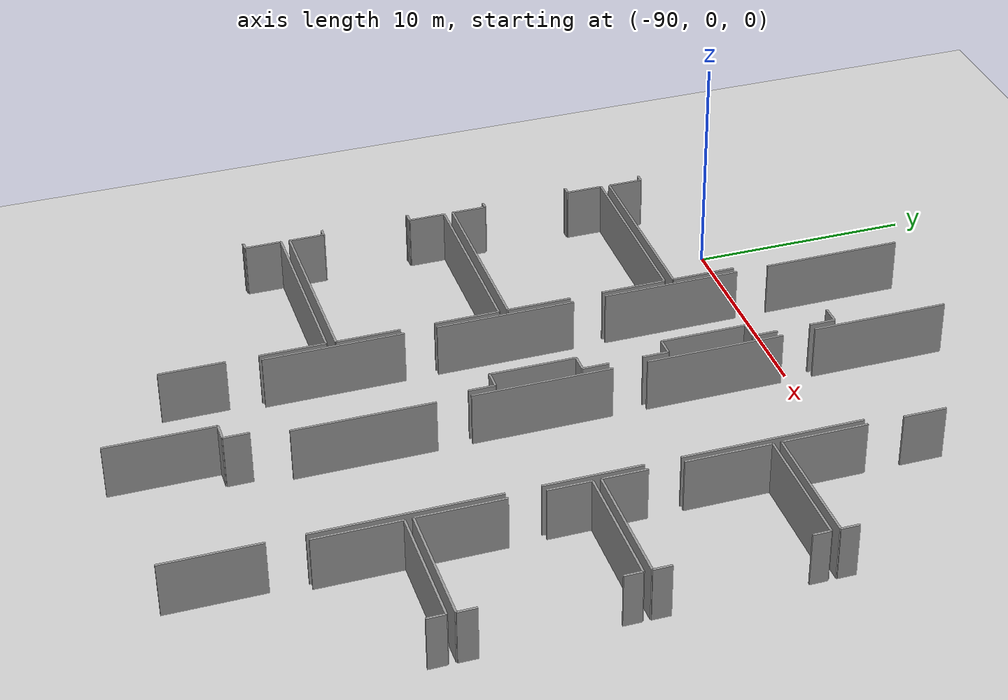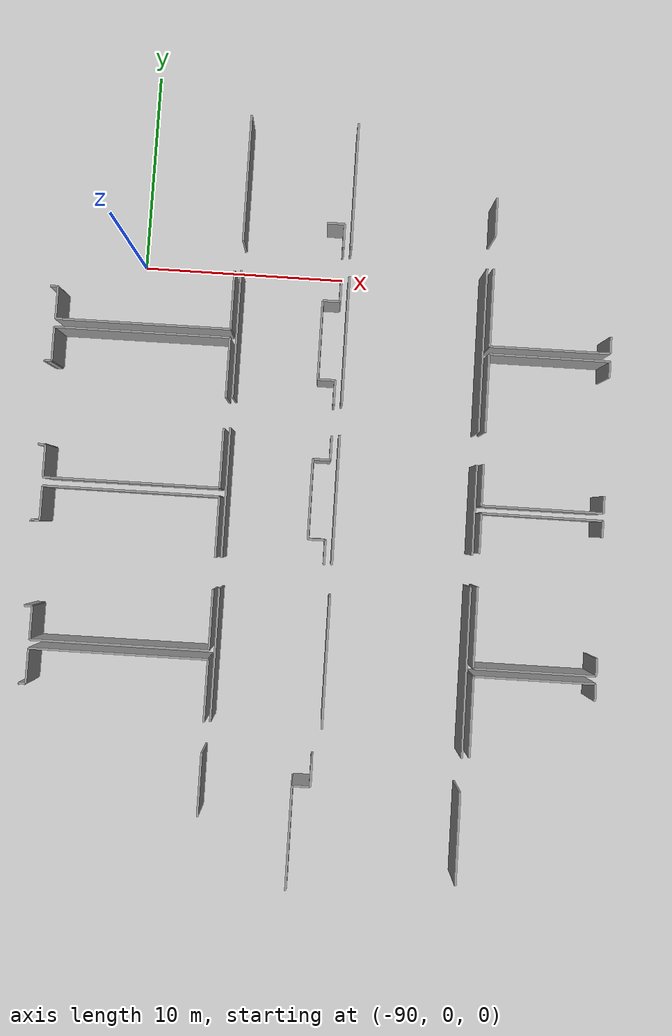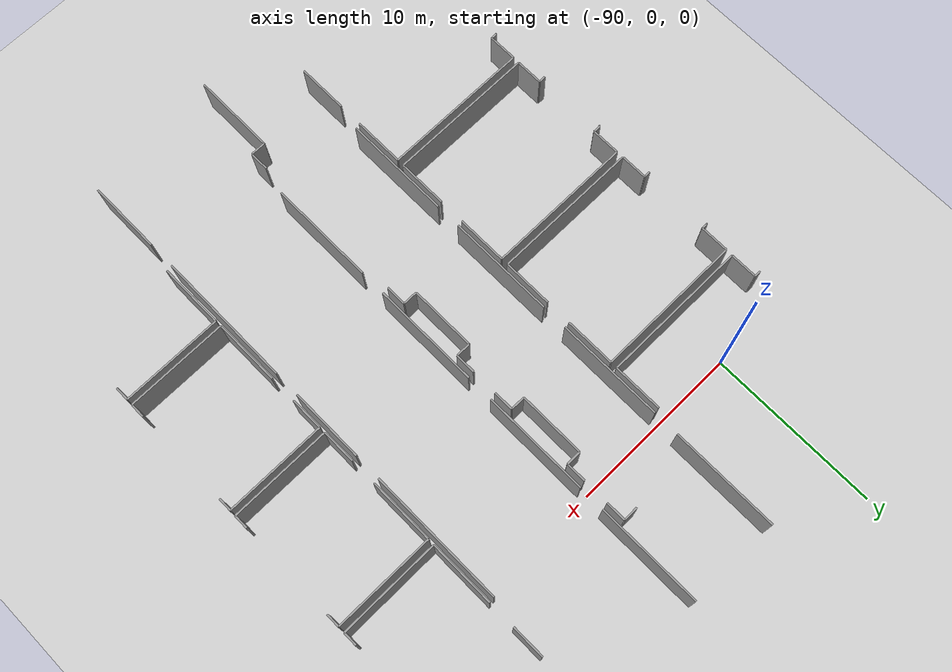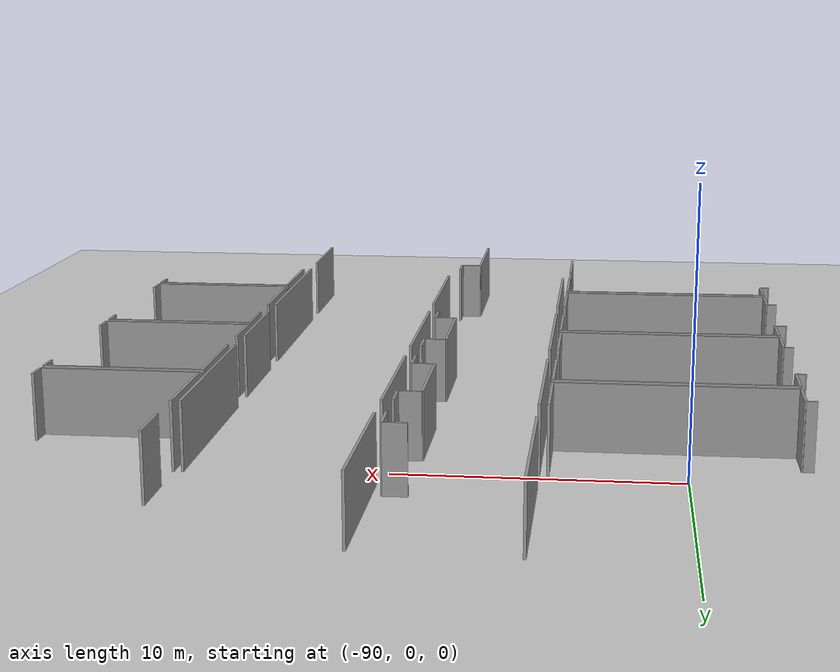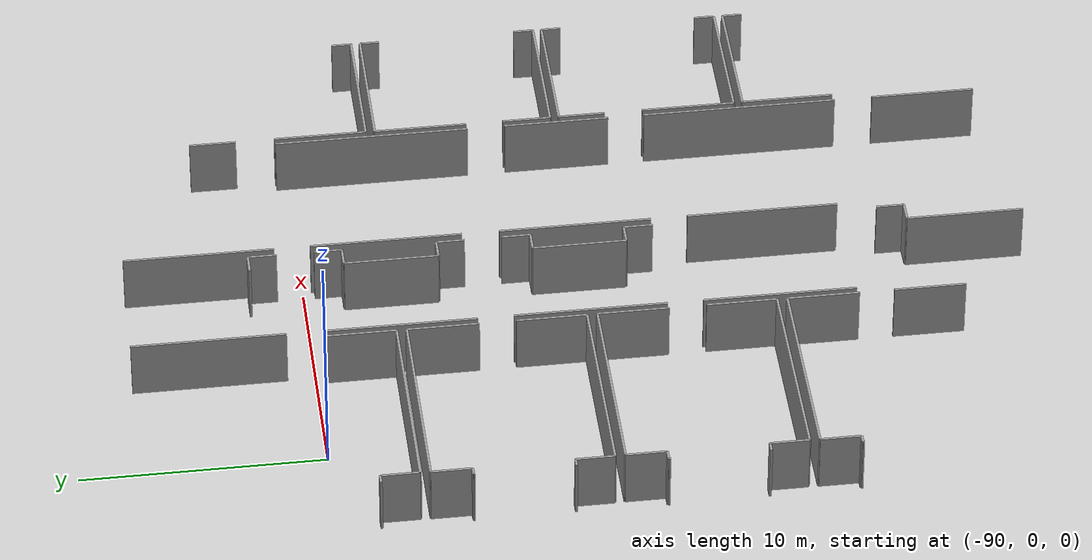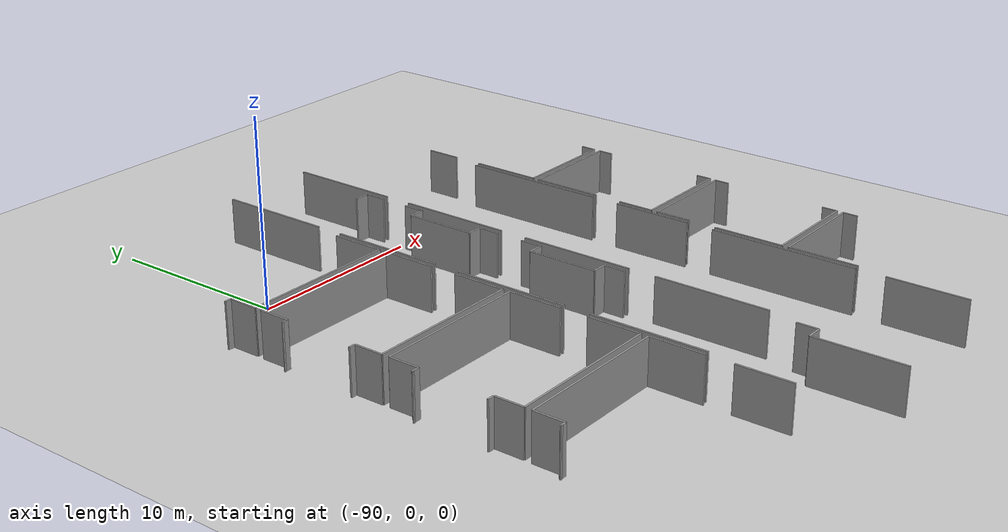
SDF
<sdf version="1.6">
 <world name="default">
  <model name="ground_plane">
   <static>1</static>
   <link name="link">
    <collision name="collision">
     <geometry><plane><normal>0 0 1</normal><size>100 100</size></plane></geometry>
     <surface><friction><ode><mu>100</mu><mu2>50</mu2></ode></friction></surface>
    </collision>
    <visual name="visual">
     <cast_shadows>0</cast_shadows>
     <geometry><plane><normal>0 0 1</normal><size>100 100</size></plane></geometry>
     <material>
      <script><uri>file://media/materials/scripts/gazebo.material</uri><name>Gazebo/Grey</name></script>
     </material>
    </visual>
   </link>
  </model>
  <model name="0510035517_A_40_1_105">
   <static>1</static>
   <link name="Wall_339">
    <collision name="Wall_339_Collision">
     <geometry><box><size>1.58949823043 0.1 2.5</size></box></geometry>
     <pose>0.794749115216 0 1.25 0 0 0</pose>
    </collision>
    <visual name="Wall_339_Visual">
     <pose>0.794749115216 0 1.25 0 0 0</pose>
     <geometry><box><size>1.58949823043 0.1 2.5</size></box></geometry>
     <material>
      <script><uri>file://media/materials/scripts/gazebo.material</uri><name>Gazebo/Grey</name></script>
      <ambient>1 1 1 1</ambient>
     </material>
    </visual>
    <pose>0.732480636409 -67.0842467103 0 0 0 1.57079632679</pose>
   </link>
   <link name="Wall_340">
    <collision name="Wall_340_Collision">
     <geometry><box><size>0.382760526868 0.1 2.5</size></box></geometry>
     <pose>0.191380263434 0 1.25 0 0 0</pose>
    </collision>
    <visual name="Wall_340_Visual">
     <pose>0.191380263434 0 1.25 0 0 0</pose>
     <geometry><box><size>0.382760526868 0.1 2.5</size></box></geometry>
     <material>
      <script><uri>file://media/materials/scripts/gazebo.material</uri><name>Gazebo/Grey</name></script>
      <ambient>1 1 1 1</ambient>
     </material>
    </visual>
    <pose>0.732480636409 -65.4947484798 0 0 0 3.14159265359</pose>
   </link>
   <link name="Wall_346">
    <collision name="Wall_346_Collision">
     <geometry><box><size>2.89434055775 0.1 2.5</size></box></geometry>
     <pose>1.44717027887 0 1.25 0 0 0</pose>
    </collision>
    <visual name="Wall_346_Visual">
     <pose>1.44717027887 0 1.25 0 0 0</pose>
     <geometry><box><size>2.89434055775 0.1 2.5</size></box></geometry>
     <material>
      <script><uri>file://media/materials/scripts/gazebo.material</uri><name>Gazebo/Grey</name></script>
      <ambient>1 1 1 1</ambient>
     </material>
    </visual>
    <pose>9.2894404097 -64.1827897549 0 0 0 -1.57079632679</pose>
   </link>
   <link name="Wall_347">
    <collision name="Wall_347_Collision">
     <geometry><box><size>8.55696273247 0.1 2.5</size></box></geometry>
     <pose>4.27848136623 0 1.25 0 0 0</pose>
    </collision>
    <visual name="Wall_347_Visual">
     <pose>4.27848136623 0 1.25 0 0 0</pose>
     <geometry><box><size>8.55696273247 0.1 2.5</size></box></geometry>
     <material>
      <script><uri>file://media/materials/scripts/gazebo.material</uri><name>Gazebo/Grey</name></script>
      <ambient>1 1 1 1</ambient>
     </material>
    </visual>
    <pose>9.2894404097 -67.0771303127 0 0 0 -3.14076100355</pose>
   </link>
   <link name="Wall_348">
    <collision name="Wall_348_Collision">
     <geometry><box><size>1.57856947701 0.1 2.5</size></box></geometry>
     <pose>0.789284738504 0 1.25 0 0 0</pose>
    </collision>
    <visual name="Wall_348_Visual">
     <pose>0.789284738504 0 1.25 0 0 0</pose>
     <geometry><box><size>1.57856947701 0.1 2.5</size></box></geometry>
     <material>
      <script><uri>file://media/materials/scripts/gazebo.material</uri><name>Gazebo/Grey</name></script>
      <ambient>1 1 1 1</ambient>
     </material>
    </visual>
    <pose>0.739342876931 -74.8342578296 0 0 0 1.57079632679</pose>
   </link>
   <link name="Wall_349">
    <collision name="Wall_349_Collision">
     <geometry><box><size>0.365477847036 0.1 2.5</size></box></geometry>
     <pose>0.182738923518 0 1.25 0 0 0</pose>
    </collision>
    <visual name="Wall_349_Visual">
     <pose>0.182738923518 0 1.25 0 0 0</pose>
     <geometry><box><size>0.365477847036 0.1 2.5</size></box></geometry>
     <material>
      <script><uri>file://media/materials/scripts/gazebo.material</uri><name>Gazebo/Grey</name></script>
      <ambient>1 1 1 1</ambient>
     </material>
    </visual>
    <pose>0.739342876931 -73.2556883526 0 0 0 3.14159265359</pose>
   </link>
   <link name="Wall_350">
    <collision name="Wall_350_Collision">
     <geometry><box><size>0.0505772542142 0.1 2.5</size></box></geometry>
     <pose>0.0252886271071 0 1.25 0 0 0</pose>
    </collision>
    <visual name="Wall_350_Visual">
     <pose>0.0252886271071 0 1.25 0 0 0</pose>
     <geometry><box><size>0.0505772542142 0.1 2.5</size></box></geometry>
     <material>
      <script><uri>file://media/materials/scripts/gazebo.material</uri><name>Gazebo/Grey</name></script>
      <ambient>1 1 1 1</ambient>
     </material>
    </visual>
    <pose>0.373865029895 -69.2156077848 0 0 0 1.57079632679</pose>
   </link>
   <link name="Wall_351">
    <collision name="Wall_351_Collision">
     <geometry><box><size>0.337012256724 0.1 2.5</size></box></geometry>
     <pose>0.168506128362 0 1.25 0 0 0</pose>
    </collision>
    <visual name="Wall_351_Visual">
     <pose>0.168506128362 0 1.25 0 0 0</pose>
     <geometry><box><size>0.337012256724 0.1 2.5</size></box></geometry>
     <material>
      <script><uri>file://media/materials/scripts/gazebo.material</uri><name>Gazebo/Grey</name></script>
      <ambient>1 1 1 1</ambient>
     </material>
    </visual>
    <pose>0.373865029895 -69.1650305306 0 0 0 0.0</pose>
   </link>
   <link name="Wall_352">
    <collision name="Wall_352_Collision">
     <geometry><box><size>1.67540331548 0.1 2.5</size></box></geometry>
     <pose>0.837701657739 0 1.25 0 0 0</pose>
    </collision>
    <visual name="Wall_352_Visual">
     <pose>0.837701657739 0 1.25 0 0 0</pose>
     <geometry><box><size>1.67540331548 0.1 2.5</size></box></geometry>
     <material>
      <script><uri>file://media/materials/scripts/gazebo.material</uri><name>Gazebo/Grey</name></script>
      <ambient>1 1 1 1</ambient>
     </material>
    </visual>
    <pose>0.710877286619 -69.1650305306 0 0 0 1.57079632679</pose>
   </link>
   <link name="Wall_353">
    <collision name="Wall_353_Collision">
     <geometry><box><size>8.57780065191 0.1 2.5</size></box></geometry>
     <pose>4.28890032596 0 1.25 0 0 0</pose>
    </collision>
    <visual name="Wall_353_Visual">
     <pose>4.28890032596 0 1.25 0 0 0</pose>
     <geometry><box><size>8.57780065191 0.1 2.5</size></box></geometry>
     <material>
      <script><uri>file://media/materials/scripts/gazebo.material</uri><name>Gazebo/Grey</name></script>
      <ambient>1 1 1 1</ambient>
     </material>
    </visual>
    <pose>0.710877286619 -67.4896272151 0 0 0 0.0</pose>
   </link>
   <link name="Wall_354">
    <collision name="Wall_354_Collision">
     <geometry><box><size>2.95101758131 0.1 2.5</size></box></geometry>
     <pose>1.47550879066 0 1.25 0 0 0</pose>
    </collision>
    <visual name="Wall_354_Visual">
     <pose>1.47550879066 0 1.25 0 0 0</pose>
     <geometry><box><size>2.95101758131 0.1 2.5</size></box></geometry>
     <material>
      <script><uri>file://media/materials/scripts/gazebo.material</uri><name>Gazebo/Grey</name></script>
      <ambient>1 1 1 1</ambient>
     </material>
    </visual>
    <pose>9.28867793853 -67.4896272151 0 0 0 -1.57079632679</pose>
   </link>
   <link name="Wall_355">
    <collision name="Wall_355_Collision">
     <geometry><box><size>2.89713628537 0.1 2.5</size></box></geometry>
     <pose>1.44856814268 0 1.25 0 0 0</pose>
    </collision>
    <visual name="Wall_355_Visual">
     <pose>1.44856814268 0 1.25 0 0 0</pose>
     <geometry><box><size>2.89713628537 0.1 2.5</size></box></geometry>
     <material>
      <script><uri>file://media/materials/scripts/gazebo.material</uri><name>Gazebo/Grey</name></script>
      <ambient>1 1 1 1</ambient>
     </material>
    </visual>
    <pose>9.28867793853 -71.9320384031 0 0 0 -1.57079632679</pose>
   </link>
   <link name="Wall_356">
    <collision name="Wall_356_Collision">
     <geometry><box><size>8.54933657273 0.1 2.5</size></box></geometry>
     <pose>4.27466828637 0 1.25 0 0 0</pose>
    </collision>
    <visual name="Wall_356_Visual">
     <pose>4.27466828637 0 1.25 0 0 0</pose>
     <geometry><box><size>8.54933657273 0.1 2.5</size></box></geometry>
     <material>
      <script><uri>file://media/materials/scripts/gazebo.material</uri><name>Gazebo/Grey</name></script>
      <ambient>1 1 1 1</ambient>
     </material>
    </visual>
    <pose>9.28867793853 -74.8291746885 0 0 0 -3.14099808799</pose>
   </link>
   <link name="Wall_357">
    <collision name="Wall_357_Collision">
     <geometry><box><size>1.59305642922 0.1 2.5</size></box></geometry>
     <pose>0.79652821461 0 1.25 0 0 0</pose>
    </collision>
    <visual name="Wall_357_Visual">
     <pose>0.79652821461 0 1.25 0 0 0</pose>
     <geometry><box><size>1.59305642922 0.1 2.5</size></box></geometry>
     <material>
      <script><uri>file://media/materials/scripts/gazebo.material</uri><name>Gazebo/Grey</name></script>
      <ambient>1 1 1 1</ambient>
     </material>
    </visual>
    <pose>0.728414123508 -82.6104471258 0 0 0 1.57079632679</pose>
   </link>
   <link name="Wall_358">
    <collision name="Wall_358_Collision">
     <geometry><box><size>0.395722536742 0.1 2.5</size></box></geometry>
     <pose>0.197861268371 0 1.25 0 0 0</pose>
    </collision>
    <visual name="Wall_358_Visual">
     <pose>0.197861268371 0 1.25 0 0 0</pose>
     <geometry><box><size>0.395722536742 0.1 2.5</size></box></geometry>
     <material>
      <script><uri>file://media/materials/scripts/gazebo.material</uri><name>Gazebo/Grey</name></script>
      <ambient>1 1 1 1</ambient>
     </material>
    </visual>
    <pose>0.728414123508 -81.0173906966 0 0 0 3.14159265359</pose>
   </link>
   <link name="Wall_359">
    <collision name="Wall_359_Collision">
     <geometry><box><size>0.0765012739622 0.1 2.5</size></box></geometry>
     <pose>0.0382506369811 0 1.25 0 0 0</pose>
    </collision>
    <visual name="Wall_359_Visual">
     <pose>0.0382506369811 0 1.25 0 0 0</pose>
     <geometry><box><size>0.0765012739622 0.1 2.5</size></box></geometry>
     <material>
      <script><uri>file://media/materials/scripts/gazebo.material</uri><name>Gazebo/Grey</name></script>
      <ambient>1 1 1 1</ambient>
     </material>
    </visual>
    <pose>0.332691586766 -76.9953552798 0 0 0 1.57079632679</pose>
   </link>
   <link name="Wall_360">
    <collision name="Wall_360_Collision">
     <geometry><box><size>0.419613300039 0.1 2.5</size></box></geometry>
     <pose>0.209806650019 0 1.25 0 0 0</pose>
    </collision>
    <visual name="Wall_360_Visual">
     <pose>0.209806650019 0 1.25 0 0 0</pose>
     <geometry><box><size>0.419613300039 0.1 2.5</size></box></geometry>
     <material>
      <script><uri>file://media/materials/scripts/gazebo.material</uri><name>Gazebo/Grey</name></script>
      <ambient>1 1 1 1</ambient>
     </material>
    </visual>
    <pose>0.332691586766 -76.9188540058 0 0 0 0.0</pose>
   </link>
   <link name="Wall_361">
    <collision name="Wall_361_Collision">
     <geometry><box><size>1.67209927375 0.1 2.5</size></box></geometry>
     <pose>0.836049636873 0 1.25 0 0 0</pose>
    </collision>
    <visual name="Wall_361_Visual">
     <pose>0.836049636873 0 1.25 0 0 0</pose>
     <geometry><box><size>1.67209927375 0.1 2.5</size></box></geometry>
     <material>
      <script><uri>file://media/materials/scripts/gazebo.material</uri><name>Gazebo/Grey</name></script>
      <ambient>1 1 1 1</ambient>
     </material>
    </visual>
    <pose>0.752304886805 -76.9188540058 0 0 0 1.57079632679</pose>
   </link>
   <link name="Wall_362">
    <collision name="Wall_362_Collision">
     <geometry><box><size>8.55136831805 0.1 2.5</size></box></geometry>
     <pose>4.27568415903 0 1.25 0 0 0</pose>
    </collision>
    <visual name="Wall_362_Visual">
     <pose>4.27568415903 0 1.25 0 0 0</pose>
     <geometry><box><size>8.55136831805 0.1 2.5</size></box></geometry>
     <material>
      <script><uri>file://media/materials/scripts/gazebo.material</uri><name>Gazebo/Grey</name></script>
      <ambient>1 1 1 1</ambient>
     </material>
    </visual>
    <pose>0.752304886805 -75.2467547321 0 0 0 0.0</pose>
   </link>
   <link name="Wall_363">
    <collision name="Wall_363_Collision">
     <geometry><box><size>2.93576815793 0.1 2.5</size></box></geometry>
     <pose>1.46788407897 0 1.25 0 0 0</pose>
    </collision>
    <visual name="Wall_363_Visual">
     <pose>1.46788407897 0 1.25 0 0 0</pose>
     <geometry><box><size>2.93576815793 0.1 2.5</size></box></geometry>
     <material>
      <script><uri>file://media/materials/scripts/gazebo.material</uri><name>Gazebo/Grey</name></script>
      <ambient>1 1 1 1</ambient>
     </material>
    </visual>
    <pose>9.30367320486 -75.2467547321 0 0 0 -1.57079632679</pose>
   </link>
   <link name="Wall_364">
    <collision name="Wall_364_Collision">
     <geometry><box><size>2.89357808658 0.1 2.5</size></box></geometry>
     <pose>1.44678904329 0 1.25 0 0 0</pose>
    </collision>
    <visual name="Wall_364_Visual">
     <pose>1.44678904329 0 1.25 0 0 0</pose>
     <geometry><box><size>2.89357808658 0.1 2.5</size></box></geometry>
     <material>
      <script><uri>file://media/materials/scripts/gazebo.material</uri><name>Gazebo/Grey</name></script>
      <ambient>1 1 1 1</ambient>
     </material>
    </visual>
    <pose>9.30367320486 -79.7036528723 0 0 0 -1.57079632679</pose>
   </link>
   <link name="Wall_365">
    <collision name="Wall_365_Collision">
     <geometry><box><size>8.5752692657 0.1 2.5</size></box></geometry>
     <pose>4.28763463285 0 1.25 0 0 0</pose>
    </collision>
    <visual name="Wall_365_Visual">
     <pose>4.28763463285 0 1.25 0 0 0</pose>
     <geometry><box><size>8.5752692657 0.1 2.5</size></box></geometry>
     <material>
      <script><uri>file://media/materials/scripts/gazebo.material</uri><name>Gazebo/Grey</name></script>
      <ambient>1 1 1 1</ambient>
     </material>
    </visual>
    <pose>9.30367320486 -82.5972309589 0 0 0 -3.14005145742</pose>
   </link>
   <link name="Wall_368">
    <collision name="Wall_368_Collision">
     <geometry><box><size>0.0670974628772 0.1 2.5</size></box></geometry>
     <pose>0.0335487314386 0 1.25 0 0 0</pose>
    </collision>
    <visual name="Wall_368_Visual">
     <pose>0.0335487314386 0 1.25 0 0 0</pose>
     <geometry><box><size>0.0670974628772 0.1 2.5</size></box></geometry>
     <material>
      <script><uri>file://media/materials/scripts/gazebo.material</uri><name>Gazebo/Grey</name></script>
      <ambient>1 1 1 1</ambient>
     </material>
    </visual>
    <pose>0.379710642191 -84.753753582 0 0 0 1.57079632679</pose>
   </link>
   <link name="Wall_369">
    <collision name="Wall_369_Collision">
     <geometry><box><size>0.334216529104 0.1 2.5</size></box></geometry>
     <pose>0.167108264552 0 1.25 0 0 0</pose>
    </collision>
    <visual name="Wall_369_Visual">
     <pose>0.167108264552 0 1.25 0 0 0</pose>
     <geometry><box><size>0.334216529104 0.1 2.5</size></box></geometry>
     <material>
      <script><uri>file://media/materials/scripts/gazebo.material</uri><name>Gazebo/Grey</name></script>
      <ambient>1 1 1 1</ambient>
     </material>
    </visual>
    <pose>0.379710642191 -84.6866561191 0 0 0 0.0</pose>
   </link>
   <link name="Wall_370">
    <collision name="Wall_370_Collision">
     <geometry><box><size>1.66955770318 0.1 2.5</size></box></geometry>
     <pose>0.834778851591 0 1.25 0 0 0</pose>
    </collision>
    <visual name="Wall_370_Visual">
     <pose>0.834778851591 0 1.25 0 0 0</pose>
     <geometry><box><size>1.66955770318 0.1 2.5</size></box></geometry>
     <material>
      <script><uri>file://media/materials/scripts/gazebo.material</uri><name>Gazebo/Grey</name></script>
      <ambient>1 1 1 1</ambient>
     </material>
    </visual>
    <pose>0.713927171295 -84.6866561191 0 0 0 1.57079632679</pose>
   </link>
   <link name="Wall_371">
    <collision name="Wall_371_Collision">
     <geometry><box><size>8.5831379501 0.1 2.5</size></box></geometry>
     <pose>4.29156897505 0 1.25 0 0 0</pose>
    </collision>
    <visual name="Wall_371_Visual">
     <pose>4.29156897505 0 1.25 0 0 0</pose>
     <geometry><box><size>8.5831379501 0.1 2.5</size></box></geometry>
     <material>
      <script><uri>file://media/materials/scripts/gazebo.material</uri><name>Gazebo/Grey</name></script>
      <ambient>1 1 1 1</ambient>
     </material>
    </visual>
    <pose>0.713927171295 -83.017098416 0 0 0 0.0</pose>
   </link>
   <link name="Wall_372">
    <collision name="Wall_372_Collision">
     <geometry><box><size>2.96601284764 0.1 2.5</size></box></geometry>
     <pose>1.48300642382 0 1.25 0 0 0</pose>
    </collision>
    <visual name="Wall_372_Visual">
     <pose>1.48300642382 0 1.25 0 0 0</pose>
     <geometry><box><size>2.96601284764 0.1 2.5</size></box></geometry>
     <material>
      <script><uri>file://media/materials/scripts/gazebo.material</uri><name>Gazebo/Grey</name></script>
      <ambient>1 1 1 1</ambient>
     </material>
    </visual>
    <pose>9.29706512139 -83.017098416 0 0 0 -1.57079632679</pose>
   </link>
   <link name="Wall_373">
    <collision name="Wall_373_Collision">
     <geometry><box><size>2.94771353958 0.1 2.5</size></box></geometry>
     <pose>1.47385676979 0 1.25 0 0 0</pose>
    </collision>
    <visual name="Wall_373_Visual">
     <pose>1.47385676979 0 1.25 0 0 0</pose>
     <geometry><box><size>2.94771353958 0.1 2.5</size></box></geometry>
     <material>
      <script><uri>file://media/materials/scripts/gazebo.material</uri><name>Gazebo/Grey</name></script>
      <ambient>1 1 1 1</ambient>
     </material>
    </visual>
    <pose>9.29706512139 -87.414523805 0 0 0 -1.57079632679</pose>
   </link>
   <link name="Wall_416">
    <collision name="Wall_416_Collision">
     <geometry><box><size>3.81032258884 0.1 2.5</size></box></geometry>
     <pose>1.90516129442 0 1.25 0 0 0</pose>
    </collision>
    <visual name="Wall_416_Visual">
     <pose>1.90516129442 0 1.25 0 0 0</pose>
     <geometry><box><size>3.81032258884 0.1 2.5</size></box></geometry>
     <material>
      <script><uri>file://media/materials/scripts/gazebo.material</uri><name>Gazebo/Grey</name></script>
      <ambient>1 1 1 1</ambient>
     </material>
    </visual>
    <pose>21.9675568518 -86.8365706588 0 0 0 1.57079632679</pose>
   </link>
   <link name="Wall_417">
    <collision name="Wall_417_Collision">
     <geometry><box><size>5.82400894633 0.1 2.5</size></box></geometry>
     <pose>2.91200447316 0 1.25 0 0 0</pose>
    </collision>
    <visual name="Wall_417_Visual">
     <pose>2.91200447316 0 1.25 0 0 0</pose>
     <geometry><box><size>5.82400894633 0.1 2.5</size></box></geometry>
     <material>
      <script><uri>file://media/materials/scripts/gazebo.material</uri><name>Gazebo/Grey</name></script>
      <ambient>1 1 1 1</ambient>
     </material>
    </visual>
    <pose>21.9675568518 -83.02624807 0 0 0 0.0</pose>
   </link>
   <link name="Wall_418">
    <collision name="Wall_418_Collision">
     <geometry><box><size>0.814319208555 0.1 2.5</size></box></geometry>
     <pose>0.407159604277 0 1.25 0 0 0</pose>
    </collision>
    <visual name="Wall_418_Visual">
     <pose>0.407159604277 0 1.25 0 0 0</pose>
     <geometry><box><size>0.814319208555 0.1 2.5</size></box></geometry>
     <material>
      <script><uri>file://media/materials/scripts/gazebo.material</uri><name>Gazebo/Grey</name></script>
      <ambient>1 1 1 1</ambient>
     </material>
    </visual>
    <pose>27.7915657981 -83.02624807 0 0 0 -1.57079632679</pose>
   </link>
   <link name="Wall_421">
    <collision name="Wall_421_Collision">
     <geometry><box><size>3.87996162228 0.1 2.5</size></box></geometry>
     <pose>1.93998081114 0 1.25 0 0 0</pose>
    </collision>
    <visual name="Wall_421_Visual">
     <pose>1.93998081114 0 1.25 0 0 0</pose>
     <geometry><box><size>3.87996162228 0.1 2.5</size></box></geometry>
     <material>
      <script><uri>file://media/materials/scripts/gazebo.material</uri><name>Gazebo/Grey</name></script>
      <ambient>1 1 1 1</ambient>
     </material>
    </visual>
    <pose>21.9423953032 -82.660770223 0 0 0 1.57079632679</pose>
   </link>
   <link name="Wall_422">
    <collision name="Wall_422_Collision">
     <geometry><box><size>1.9361684553 0.1 2.5</size></box></geometry>
     <pose>0.968084227648 0 1.25 0 0 0</pose>
    </collision>
    <visual name="Wall_422_Visual">
     <pose>0.968084227648 0 1.25 0 0 0</pose>
     <geometry><box><size>1.9361684553 0.1 2.5</size></box></geometry>
     <material>
      <script><uri>file://media/materials/scripts/gazebo.material</uri><name>Gazebo/Grey</name></script>
      <ambient>1 1 1 1</ambient>
     </material>
    </visual>
    <pose>21.9423953032 -77.1989350819 0 0 0 1.57079632679</pose>
   </link>
   <link name="Wall_423">
    <collision name="Wall_423_Collision">
     <geometry><box><size>5.86111587656 0.1 2.5</size></box></geometry>
     <pose>2.93055793828 0 1.25 0 0 0</pose>
    </collision>
    <visual name="Wall_423_Visual">
     <pose>2.93055793828 0 1.25 0 0 0</pose>
     <geometry><box><size>5.86111587656 0.1 2.5</size></box></geometry>
     <material>
      <script><uri>file://media/materials/scripts/gazebo.material</uri><name>Gazebo/Grey</name></script>
      <ambient>1 1 1 1</ambient>
     </material>
    </visual>
    <pose>21.9423953032 -75.2627666266 0 0 0 0.0</pose>
   </link>
   <link name="Wall_424">
    <collision name="Wall_424_Collision">
     <geometry><box><size>0.805169554526 0.1 2.5</size></box></geometry>
     <pose>0.402584777263 0 1.25 0 0 0</pose>
    </collision>
    <visual name="Wall_424_Visual">
     <pose>0.402584777263 0 1.25 0 0 0</pose>
     <geometry><box><size>0.805169554526 0.1 2.5</size></box></geometry>
     <material>
      <script><uri>file://media/materials/scripts/gazebo.material</uri><name>Gazebo/Grey</name></script>
      <ambient>1 1 1 1</ambient>
     </material>
    </visual>
    <pose>27.8035111797 -75.2627666266 0 0 0 -1.57079632679</pose>
   </link>
   <link name="Wall_425">
    <collision name="Wall_425_Collision">
     <geometry><box><size>0.847359625881 0.1 2.5</size></box></geometry>
     <pose>0.42367981294 0 1.25 0 0 0</pose>
    </collision>
    <visual name="Wall_425_Visual">
     <pose>0.42367981294 0 1.25 0 0 0</pose>
     <geometry><box><size>0.847359625881 0.1 2.5</size></box></geometry>
     <material>
      <script><uri>file://media/materials/scripts/gazebo.material</uri><name>Gazebo/Grey</name></script>
      <ambient>1 1 1 1</ambient>
     </material>
    </visual>
    <pose>27.8035111797 -81.8134105971 0 0 0 -1.57079632679</pose>
   </link>
   <link name="Wall_426">
    <collision name="Wall_426_Collision">
     <geometry><box><size>5.86111587656 0.1 2.5</size></box></geometry>
     <pose>2.93055793828 0 1.25 0 0 0</pose>
    </collision>
    <visual name="Wall_426_Visual">
     <pose>2.93055793828 0 1.25 0 0 0</pose>
     <geometry><box><size>5.86111587656 0.1 2.5</size></box></geometry>
     <material>
      <script><uri>file://media/materials/scripts/gazebo.material</uri><name>Gazebo/Grey</name></script>
      <ambient>1 1 1 1</ambient>
     </material>
    </visual>
    <pose>27.8035111797 -82.660770223 0 0 0 3.14159265359</pose>
   </link>
   <link name="Wall_427">
    <collision name="Wall_427_Collision">
     <geometry><box><size>2.00402838934 0.1 2.5</size></box></geometry>
     <pose>1.00201419467 0 1.25 0 0 0</pose>
    </collision>
    <visual name="Wall_427_Visual">
     <pose>1.00201419467 0 1.25 0 0 0</pose>
     <geometry><box><size>2.00402838934 0.1 2.5</size></box></geometry>
     <material>
      <script><uri>file://media/materials/scripts/gazebo.material</uri><name>Gazebo/Grey</name></script>
      <ambient>1 1 1 1</ambient>
     </material>
    </visual>
    <pose>21.9299416074 -74.9013552925 0 0 0 1.57079632679</pose>
   </link>
   <link name="Wall_428">
    <collision name="Wall_428_Collision">
     <geometry><box><size>3.83624660859 0.1 2.5</size></box></geometry>
     <pose>1.9181233043 0 1.25 0 0 0</pose>
    </collision>
    <visual name="Wall_428_Visual">
     <pose>1.9181233043 0 1.25 0 0 0</pose>
     <geometry><box><size>3.83624660859 0.1 2.5</size></box></geometry>
     <material>
      <script><uri>file://media/materials/scripts/gazebo.material</uri><name>Gazebo/Grey</name></script>
      <ambient>1 1 1 1</ambient>
     </material>
    </visual>
    <pose>21.9299416074 -71.354085257 0 0 0 1.57079632679</pose>
   </link>
   <link name="Wall_429">
    <collision name="Wall_429_Collision">
     <geometry><box><size>5.88094012695 0.1 2.5</size></box></geometry>
     <pose>2.94047006348 0 1.25 0 0 0</pose>
    </collision>
    <visual name="Wall_429_Visual">
     <pose>2.94047006348 0 1.25 0 0 0</pose>
     <geometry><box><size>5.88094012695 0.1 2.5</size></box></geometry>
     <material>
      <script><uri>file://media/materials/scripts/gazebo.material</uri><name>Gazebo/Grey</name></script>
      <ambient>1 1 1 1</ambient>
     </material>
    </visual>
    <pose>21.9299416074 -67.5178386484 0 0 0 0.0</pose>
   </link>
   <link name="Wall_430">
    <collision name="Wall_430_Collision">
     <geometry><box><size>0.794494958159 0.1 2.5</size></box></geometry>
     <pose>0.39724747908 0 1.25 0 0 0</pose>
    </collision>
    <visual name="Wall_430_Visual">
     <pose>0.39724747908 0 1.25 0 0 0</pose>
     <geometry><box><size>0.794494958159 0.1 2.5</size></box></geometry>
     <material>
      <script><uri>file://media/materials/scripts/gazebo.material</uri><name>Gazebo/Grey</name></script>
      <ambient>1 1 1 1</ambient>
     </material>
    </visual>
    <pose>27.8108817344 -67.5178386484 0 0 0 -1.57079632679</pose>
   </link>
   <link name="Wall_431">
    <collision name="Wall_431_Collision">
     <geometry><box><size>0.830331103105 0.1 2.5</size></box></geometry>
     <pose>0.415165551553 0 1.25 0 0 0</pose>
    </collision>
    <visual name="Wall_431_Visual">
     <pose>0.415165551553 0 1.25 0 0 0</pose>
     <geometry><box><size>0.830331103105 0.1 2.5</size></box></geometry>
     <material>
      <script><uri>file://media/materials/scripts/gazebo.material</uri><name>Gazebo/Grey</name></script>
      <ambient>1 1 1 1</ambient>
     </material>
    </visual>
    <pose>27.8108817344 -74.0700075612 0 0 0 -1.57079632679</pose>
   </link>
   <link name="Wall_432">
    <collision name="Wall_432_Collision">
     <geometry><box><size>5.88094021482 0.1 2.5</size></box></geometry>
     <pose>2.94047010741 0 1.25 0 0 0</pose>
    </collision>
    <visual name="Wall_432_Visual">
     <pose>2.94047010741 0 1.25 0 0 0</pose>
     <geometry><box><size>5.88094021482 0.1 2.5</size></box></geometry>
     <material>
      <script><uri>file://media/materials/scripts/gazebo.material</uri><name>Gazebo/Grey</name></script>
      <ambient>1 1 1 1</ambient>
     </material>
    </visual>
    <pose>27.8108817344 -74.9003386643 0 0 0 -3.14141978527</pose>
   </link>
   <link name="Wall_433">
    <collision name="Wall_433_Collision">
     <geometry><box><size>3.84692120496 0.1 2.5</size></box></geometry>
     <pose>1.92346060248 0 1.25 0 0 0</pose>
    </collision>
    <visual name="Wall_433_Visual">
     <pose>1.92346060248 0 1.25 0 0 0</pose>
     <geometry><box><size>3.84692120496 0.1 2.5</size></box></geometry>
     <material>
      <script><uri>file://media/materials/scripts/gazebo.material</uri><name>Gazebo/Grey</name></script>
      <ambient>1 1 1 1</ambient>
     </material>
    </visual>
    <pose>21.9378204762 -67.1429569903 0 0 0 1.57079632679</pose>
   </link>
   <link name="Wall_434">
    <collision name="Wall_434_Collision">
     <geometry><box><size>1.93515182707 0.1 2.5</size></box></geometry>
     <pose>0.967575913536 0 1.25 0 0 0</pose>
    </collision>
    <visual name="Wall_434_Visual">
     <pose>0.967575913536 0 1.25 0 0 0</pose>
     <geometry><box><size>1.93515182707 0.1 2.5</size></box></geometry>
     <material>
      <script><uri>file://media/materials/scripts/gazebo.material</uri><name>Gazebo/Grey</name></script>
      <ambient>1 1 1 1</ambient>
     </material>
    </visual>
    <pose>21.9378204762 -61.6940838591 0 0 0 1.57079632679</pose>
   </link>
   <link name="Wall_437">
    <collision name="Wall_437_Collision">
     <geometry><box><size>0.824993804922 0.1 2.5</size></box></geometry>
     <pose>0.412496902461 0 1.25 0 0 0</pose>
    </collision>
    <visual name="Wall_437_Visual">
     <pose>0.412496902461 0 1.25 0 0 0</pose>
     <geometry><box><size>0.824993804922 0.1 2.5</size></box></geometry>
     <material>
      <script><uri>file://media/materials/scripts/gazebo.material</uri><name>Gazebo/Grey</name></script>
      <ambient>1 1 1 1</ambient>
     </material>
    </visual>
    <pose>27.8108817344 -66.3016971337 0 0 0 -1.57079632679</pose>
   </link>
   <link name="Wall_438">
    <collision name="Wall_438_Collision">
     <geometry><box><size>5.87308378342 0.1 2.5</size></box></geometry>
     <pose>2.93654189171 0 1.25 0 0 0</pose>
    </collision>
    <visual name="Wall_438_Visual">
     <pose>2.93654189171 0 1.25 0 0 0</pose>
     <geometry><box><size>5.87308378342 0.1 2.5</size></box></geometry>
     <material>
      <script><uri>file://media/materials/scripts/gazebo.material</uri><name>Gazebo/Grey</name></script>
      <ambient>1 1 1 1</ambient>
     </material>
    </visual>
    <pose>27.8108817344 -67.1266909387 0 0 0 -3.13882305707</pose>
   </link>
   <link name="Wall_447">
    <collision name="Wall_447_Collision">
     <geometry><box><size>6.23777663407 0.1 2.5</size></box></geometry>
     <pose>3.11888831704 0 1.25 0 0 0</pose>
    </collision>
    <visual name="Wall_447_Visual">
     <pose>3.11888831704 0 1.25 0 0 0</pose>
     <geometry><box><size>6.23777663407 0.1 2.5</size></box></geometry>
     <material>
      <script><uri>file://media/materials/scripts/gazebo.material</uri><name>Gazebo/Grey</name></script>
      <ambient>1 1 1 1</ambient>
     </material>
    </visual>
    <pose>14.9136819097 -85.9406670352 0 0 0 1.57079632679</pose>
   </link>
   <link name="Wall_448">
    <collision name="Wall_448_Collision">
     <geometry><box><size>6.27640850664 0.1 2.5</size></box></geometry>
     <pose>3.13820425332 0 1.25 0 0 0</pose>
    </collision>
    <visual name="Wall_448_Visual">
     <pose>3.13820425332 0 1.25 0 0 0</pose>
     <geometry><box><size>6.27640850664 0.1 2.5</size></box></geometry>
     <material>
      <script><uri>file://media/materials/scripts/gazebo.material</uri><name>Gazebo/Grey</name></script>
      <ambient>1 1 1 1</ambient>
     </material>
    </visual>
    <pose>14.9136819097 -78.1909100729 0 0 0 1.57079632679</pose>
   </link>
   <link name="Wall_449">
    <collision name="Wall_449_Collision">
     <geometry><box><size>6.24972201572 0.1 2.5</size></box></geometry>
     <pose>3.12486100786 0 1.25 0 0 0</pose>
    </collision>
    <visual name="Wall_449_Visual">
     <pose>3.12486100786 0 1.25 0 0 0</pose>
     <geometry><box><size>6.24972201572 0.1 2.5</size></box></geometry>
     <material>
      <script><uri>file://media/materials/scripts/gazebo.material</uri><name>Gazebo/Grey</name></script>
      <ambient>1 1 1 1</ambient>
     </material>
    </visual>
    <pose>14.9136819097 -70.3656684648 0 0 0 1.57079632679</pose>
   </link>
   <link name="Wall_450">
    <collision name="Wall_450_Collision">
     <geometry><box><size>6.18847016514 0.1 2.5</size></box></geometry>
     <pose>3.09423508257 0 1.25 0 0 0</pose>
    </collision>
    <visual name="Wall_450_Visual">
     <pose>3.09423508257 0 1.25 0 0 0</pose>
     <geometry><box><size>6.18847016514 0.1 2.5</size></box></geometry>
     <material>
      <script><uri>file://media/materials/scripts/gazebo.material</uri><name>Gazebo/Grey</name></script>
      <ambient>1 1 1 1</ambient>
     </material>
    </visual>
    <pose>14.9136819097 -62.6291276694 0 0 0 1.57079632679</pose>
   </link>
   <link name="Wall_455">
    <collision name="Wall_455_Collision">
     <geometry><box><size>8.04966228881 0.1 2.5</size></box></geometry>
     <pose>4.02483114441 0 1.25 0 0 0</pose>
    </collision>
    <visual name="Wall_455_Visual">
     <pose>4.02483114441 0 1.25 0 0 0</pose>
     <geometry><box><size>8.04966228881 0.1 2.5</size></box></geometry>
     <material>
      <script><uri>file://media/materials/scripts/gazebo.material</uri><name>Gazebo/Grey</name></script>
      <ambient>1 1 1 1</ambient>
     </material>
    </visual>
    <pose>21.6185992134 -63.3267887891 0 0 0 -1.57079632679</pose>
   </link>
   <link name="Wall_456">
    <collision name="Wall_456_Collision">
     <geometry><box><size>4.36209755819 0.1 2.5</size></box></geometry>
     <pose>2.18104877909 0 1.25 0 0 0</pose>
    </collision>
    <visual name="Wall_456_Visual">
     <pose>2.18104877909 0 1.25 0 0 0</pose>
     <geometry><box><size>4.36209755819 0.1 2.5</size></box></geometry>
     <material>
      <script><uri>file://media/materials/scripts/gazebo.material</uri><name>Gazebo/Grey</name></script>
      <ambient>1 1 1 1</ambient>
     </material>
    </visual>
    <pose>21.6185992134 -72.9412960739 0 0 0 -1.57079632679</pose>
   </link>
   <link name="Wall_457">
    <collision name="Wall_457_Collision">
     <geometry><box><size>8.07736540795 0.1 2.5</size></box></geometry>
     <pose>4.03868270398 0 1.25 0 0 0</pose>
    </collision>
    <visual name="Wall_457_Visual">
     <pose>4.03868270398 0 1.25 0 0 0</pose>
     <geometry><box><size>8.07736540795 0.1 2.5</size></box></geometry>
     <material>
      <script><uri>file://media/materials/scripts/gazebo.material</uri><name>Gazebo/Grey</name></script>
      <ambient>1 1 1 1</ambient>
     </material>
    </visual>
    <pose>21.6185992134 -78.8105449763 0 0 0 -1.57079632679</pose>
   </link>
   <link name="Wall_458">
    <collision name="Wall_458_Collision">
     <geometry><box><size>4.29627088059 0.1 2.5</size></box></geometry>
     <pose>2.1481354403 0 1.25 0 0 0</pose>
    </collision>
    <visual name="Wall_458_Visual">
     <pose>2.1481354403 0 1.25 0 0 0</pose>
     <geometry><box><size>4.29627088059 0.1 2.5</size></box></geometry>
     <material>
      <script><uri>file://media/materials/scripts/gazebo.material</uri><name>Gazebo/Grey</name></script>
      <ambient>1 1 1 1</ambient>
     </material>
    </visual>
    <pose>21.6185992134 -88.4730879447 0 0 0 -1.57079632679</pose>
   </link>
   <link name="Wall_491">
    <collision name="Wall_491_Collision">
     <geometry><box><size>0.856000965797 0.1 2.5</size></box></geometry>
     <pose>0.428000482898 0 1.25 0 0 0</pose>
    </collision>
    <visual name="Wall_491_Visual">
     <pose>0.428000482898 0 1.25 0 0 0</pose>
     <geometry><box><size>0.856000965797 0.1 2.5</size></box></geometry>
     <material>
      <script><uri>file://media/materials/scripts/gazebo.material</uri><name>Gazebo/Grey</name></script>
      <ambient>1 1 1 1</ambient>
     </material>
    </visual>
    <pose>13.6756828882 -61.5283734584 0 0 0 0.0</pose>
   </link>
   <link name="Wall_492">
    <collision name="Wall_492_Collision">
     <geometry><box><size>1.17090155862 0.1 2.5</size></box></geometry>
     <pose>0.585450779309 0 1.25 0 0 0</pose>
    </collision>
    <visual name="Wall_492_Visual">
     <pose>0.585450779309 0 1.25 0 0 0</pose>
     <geometry><box><size>1.17090155862 0.1 2.5</size></box></geometry>
     <material>
      <script><uri>file://media/materials/scripts/gazebo.material</uri><name>Gazebo/Grey</name></script>
      <ambient>1 1 1 1</ambient>
     </material>
    </visual>
    <pose>14.531683854 -61.5283734584 0 0 0 -1.57079632679</pose>
   </link>
   <link name="Wall_493">
    <collision name="Wall_493_Collision">
     <geometry><box><size>1.15666876346 0.1 2.5</size></box></geometry>
     <pose>0.578334381731 0 1.25 0 0 0</pose>
    </collision>
    <visual name="Wall_493_Visual">
     <pose>0.578334381731 0 1.25 0 0 0</pose>
     <geometry><box><size>1.15666876346 0.1 2.5</size></box></geometry>
     <material>
      <script><uri>file://media/materials/scripts/gazebo.material</uri><name>Gazebo/Grey</name></script>
      <ambient>1 1 1 1</ambient>
     </material>
    </visual>
    <pose>14.531683854 -64.2313337527 0 0 0 -1.57079632679</pose>
   </link>
   <link name="Wall_494">
    <collision name="Wall_494_Collision">
     <geometry><box><size>0.85091782467 0.1 2.5</size></box></geometry>
     <pose>0.425458912335 0 1.25 0 0 0</pose>
    </collision>
    <visual name="Wall_494_Visual">
     <pose>0.425458912335 0 1.25 0 0 0</pose>
     <geometry><box><size>0.85091782467 0.1 2.5</size></box></geometry>
     <material>
      <script><uri>file://media/materials/scripts/gazebo.material</uri><name>Gazebo/Grey</name></script>
      <ambient>1 1 1 1</ambient>
     </material>
    </visual>
    <pose>14.531683854 -65.3880025162 0 0 0 3.14159265359</pose>
   </link>
   <link name="Wall_495">
    <collision name="Wall_495_Collision">
     <geometry><box><size>3.87996162228 0.1 2.5</size></box></geometry>
     <pose>1.93998081114 0 1.25 0 0 0</pose>
    </collision>
    <visual name="Wall_495_Visual">
     <pose>1.93998081114 0 1.25 0 0 0</pose>
     <geometry><box><size>3.87996162228 0.1 2.5</size></box></geometry>
     <material>
      <script><uri>file://media/materials/scripts/gazebo.material</uri><name>Gazebo/Grey</name></script>
      <ambient>1 1 1 1</ambient>
     </material>
    </visual>
    <pose>13.6807660294 -65.3880025162 0 0 0 -1.57079632679</pose>
   </link>
   <link name="Wall_496">
    <collision name="Wall_496_Collision">
     <geometry><box><size>0.848630411163 0.1 2.5</size></box></geometry>
     <pose>0.424315205581 0 1.25 0 0 0</pose>
    </collision>
    <visual name="Wall_496_Visual">
     <pose>0.424315205581 0 1.25 0 0 0</pose>
     <geometry><box><size>0.848630411163 0.1 2.5</size></box></geometry>
     <material>
      <script><uri>file://media/materials/scripts/gazebo.material</uri><name>Gazebo/Grey</name></script>
      <ambient>1 1 1 1</ambient>
     </material>
    </visual>
    <pose>13.6807660294 -69.2679641384 0 0 0 0.0</pose>
   </link>
   <link name="Wall_497">
    <collision name="Wall_497_Collision">
     <geometry><box><size>1.16861414511 0.1 2.5</size></box></geometry>
     <pose>0.584307072555 0 1.25 0 0 0</pose>
    </collision>
    <visual name="Wall_497_Visual">
     <pose>0.584307072555 0 1.25 0 0 0</pose>
     <geometry><box><size>1.16861414511 0.1 2.5</size></box></geometry>
     <material>
      <script><uri>file://media/materials/scripts/gazebo.material</uri><name>Gazebo/Grey</name></script>
      <ambient>1 1 1 1</ambient>
     </material>
    </visual>
    <pose>14.5293964405 -69.2679641384 0 0 0 -1.57079632679</pose>
   </link>
   <link name="Wall_498">
    <collision name="Wall_498_Collision">
     <geometry><box><size>1.18970918079 0.1 2.5</size></box></geometry>
     <pose>0.594854590394 0 1.25 0 0 0</pose>
    </collision>
    <visual name="Wall_498_Visual">
     <pose>0.594854590394 0 1.25 0 0 0</pose>
     <geometry><box><size>1.18970918079 0.1 2.5</size></box></geometry>
     <material>
      <script><uri>file://media/materials/scripts/gazebo.material</uri><name>Gazebo/Grey</name></script>
      <ambient>1 1 1 1</ambient>
     </material>
    </visual>
    <pose>14.5293964405 -71.9632997211 0 0 0 -1.57079632679</pose>
   </link>
   <link name="Wall_499">
    <collision name="Wall_499_Collision">
     <geometry><box><size>0.843038955923 0.1 2.5</size></box></geometry>
     <pose>0.421519477961 0 1.25 0 0 0</pose>
    </collision>
    <visual name="Wall_499_Visual">
     <pose>0.421519477961 0 1.25 0 0 0</pose>
     <geometry><box><size>0.843038955923 0.1 2.5</size></box></geometry>
     <material>
      <script><uri>file://media/materials/scripts/gazebo.material</uri><name>Gazebo/Grey</name></script>
      <ambient>1 1 1 1</ambient>
     </material>
    </visual>
    <pose>14.5293964405 -73.1530089019 0 0 0 3.14159265359</pose>
   </link>
   <link name="Wall_500">
    <collision name="Wall_500_Collision">
     <geometry><box><size>3.86369557068 0.1 2.5</size></box></geometry>
     <pose>1.93184778534 0 1.25 0 0 0</pose>
    </collision>
    <visual name="Wall_500_Visual">
     <pose>1.93184778534 0 1.25 0 0 0</pose>
     <geometry><box><size>3.86369557068 0.1 2.5</size></box></geometry>
     <material>
      <script><uri>file://media/materials/scripts/gazebo.material</uri><name>Gazebo/Grey</name></script>
      <ambient>1 1 1 1</ambient>
     </material>
    </visual>
    <pose>13.6863574846 -73.1530089019 0 0 0 -1.57079632679</pose>
   </link>
   <link name="Wall_501">
    <collision name="Wall_501_Collision">
     <geometry><box><size>0.848884568219 0.1 2.5</size></box></geometry>
     <pose>0.424442284109 0 1.25 0 0 0</pose>
    </collision>
    <visual name="Wall_501_Visual">
     <pose>0.424442284109 0 1.25 0 0 0</pose>
     <geometry><box><size>0.848884568219 0.1 2.5</size></box></geometry>
     <material>
      <script><uri>file://media/materials/scripts/gazebo.material</uri><name>Gazebo/Grey</name></script>
      <ambient>1 1 1 1</ambient>
     </material>
    </visual>
    <pose>13.6863574846 -77.0167044725 0 0 0 0.0</pose>
   </link>
   <link name="Wall_502">
    <collision name="Wall_502_Collision">
     <geometry><box><size>1.1942840078 0.1 2.5</size></box></geometry>
     <pose>0.597142003901 0 1.25 0 0 0</pose>
    </collision>
    <visual name="Wall_502_Visual">
     <pose>0.597142003901 0 1.25 0 0 0</pose>
     <geometry><box><size>1.1942840078 0.1 2.5</size></box></geometry>
     <material>
      <script><uri>file://media/materials/scripts/gazebo.material</uri><name>Gazebo/Grey</name></script>
      <ambient>1 1 1 1</ambient>
     </material>
    </visual>
    <pose>14.5352420528 -77.0167044725 0 0 0 -1.57079632679</pose>
   </link>
   <link name="Wall_503">
    <collision name="Wall_503_Collision">
     <geometry><box><size>1.13811529835 0.1 2.5</size></box></geometry>
     <pose>0.569057649174 0 1.25 0 0 0</pose>
    </collision>
    <visual name="Wall_503_Visual">
     <pose>0.569057649174 0 1.25 0 0 0</pose>
     <geometry><box><size>1.13811529835 0.1 2.5</size></box></geometry>
     <material>
      <script><uri>file://media/materials/scripts/gazebo.material</uri><name>Gazebo/Grey</name></script>
      <ambient>1 1 1 1</ambient>
     </material>
    </visual>
    <pose>14.5352420528 -87.5212697687 0 0 0 -1.57079632679</pose>
   </link>
   <link name="Wall_504">
    <collision name="Wall_504_Collision">
     <geometry><box><size>0.867946347445 0.1 2.5</size></box></geometry>
     <pose>0.433973173723 0 1.25 0 0 0</pose>
    </collision>
    <visual name="Wall_504_Visual">
     <pose>0.433973173723 0 1.25 0 0 0</pose>
     <geometry><box><size>0.867946347445 0.1 2.5</size></box></geometry>
     <material>
      <script><uri>file://media/materials/scripts/gazebo.material</uri><name>Gazebo/Grey</name></script>
      <ambient>1 1 1 1</ambient>
     </material>
    </visual>
    <pose>14.5352420528 -88.659385067 0 0 0 3.14159265359</pose>
   </link>
   <link name="Wall_505">
    <collision name="Wall_505_Collision">
     <geometry><box><size>4.83686293945 0.1 2.5</size></box></geometry>
     <pose>2.41843146973 0 1.25 0 0 0</pose>
    </collision>
    <visual name="Wall_505_Visual">
     <pose>2.41843146973 0 1.25 0 0 0</pose>
     <geometry><box><size>4.83686293945 0.1 2.5</size></box></geometry>
     <material>
      <script><uri>file://media/materials/scripts/gazebo.material</uri><name>Gazebo/Grey</name></script>
      <ambient>1 1 1 1</ambient>
     </material>
    </visual>
    <pose>13.6672957054 -88.659385067 0 0 0 -1.57079632679</pose>
   </link>
   <link name="Wall_515">
    <collision name="Wall_515_Collision">
     <geometry><box><size>6.2987743276 0.1 2.5</size></box></geometry>
     <pose>3.1493871638 0 1.25 0 0 0</pose>
    </collision>
    <visual name="Wall_515_Visual">
     <pose>3.1493871638 0 1.25 0 0 0</pose>
     <geometry><box><size>6.2987743276 0.1 2.5</size></box></geometry>
     <material>
      <script><uri>file://media/materials/scripts/gazebo.material</uri><name>Gazebo/Grey</name></script>
      <ambient>1 1 1 1</ambient>
     </material>
    </visual>
    <pose>9.60459515958 -85.9205886277 0 0 0 1.57079632679</pose>
   </link>
   <link name="Wall_516">
    <collision name="Wall_516_Collision">
     <geometry><box><size>6.27742513486 0.1 2.5</size></box></geometry>
     <pose>3.13871256743 0 1.25 0 0 0</pose>
    </collision>
    <visual name="Wall_516_Visual">
     <pose>3.13871256743 0 1.25 0 0 0</pose>
     <geometry><box><size>6.27742513486 0.1 2.5</size></box></geometry>
     <material>
      <script><uri>file://media/materials/scripts/gazebo.material</uri><name>Gazebo/Grey</name></script>
      <ambient>1 1 1 1</ambient>
     </material>
    </visual>
    <pose>9.60459515958 -78.1609195402 0 0 0 1.57079632679</pose>
   </link>
   <link name="Wall_517">
    <collision name="Wall_517_Collision">
     <geometry><box><size>6.26827548083 0.1 2.5</size></box></geometry>
     <pose>3.13413774042 0 1.25 0 0 0</pose>
    </collision>
    <visual name="Wall_517_Visual">
     <pose>3.13413774042 0 1.25 0 0 0</pose>
     <geometry><box><size>6.26827548083 0.1 2.5</size></box></geometry>
     <material>
      <script><uri>file://media/materials/scripts/gazebo.material</uri><name>Gazebo/Grey</name></script>
      <ambient>1 1 1 1</ambient>
     </material>
    </visual>
    <pose>9.60459515958 -70.4043003374 0 0 0 1.57079632679</pose>
   </link>
   <link name="Wall_518">
    <collision name="Wall_518_Collision">
     <geometry><box><size>6.31427790803 0.1 2.5</size></box></geometry>
     <pose>3.15713895402 0 1.25 0 0 0</pose>
    </collision>
    <visual name="Wall_518_Visual">
     <pose>3.15713895402 0 1.25 0 0 0</pose>
     <geometry><box><size>6.31427790803 0.1 2.5</size></box></geometry>
     <material>
      <script><uri>file://media/materials/scripts/gazebo.material</uri><name>Gazebo/Grey</name></script>
      <ambient>1 1 1 1</ambient>
     </material>
    </visual>
    <pose>9.60459515958 -62.6456478781 0 0 0 1.57079632679</pose>
   </link>
   <pose>-94.6 63.7835382475 0 0 0 0</pose>
  </model>
 </world>
</sdf>
